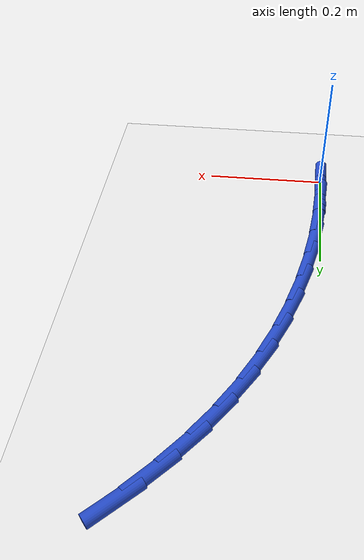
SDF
<sdf version="1.6">
 <world name="default">
  <model name="ground_plane">
   <static>1</static>
   <link name="link">
    <collision name="collision">
     <geometry><plane><normal>0 0 1</normal><size>100 100</size></plane></geometry>
     <surface><friction><ode><mu>100</mu><mu2>50</mu2></ode></friction></surface>
    </collision>
    <visual name="visual">
     <cast_shadows>0</cast_shadows>
     <geometry><plane><normal>0 0 1</normal><size>100 100</size></plane></geometry>
     <material>
      <script><uri>file://media/materials/scripts/gazebo.material</uri><name>Gazebo/WhiteGlow</name></script>
     </material>
    </visual>
   </link>
  </model>
  <model name="line">
   <link name="link_0">
    <pose>7.28583859910259e-17 -1.3877787807814457e-16 0.01 0 1.57 1.5537225617159984</pose>
    <collision name="collision">
     <geometry><cylinder><radius>0.01</radius><length>0.08</length></cylinder></geometry>
    </collision>
    <visual name="visual">
     <material>
      <script><name>Gazebo/Blue</name><uri>file://media/materials/scripts/gazebo.material</uri></script>
     </material>
     <geometry><cylinder><radius>0.01</radius><length>0.08</length></cylinder></geometry>
    </visual>
   </link>
   <link name="link_1">
    <pose>0.0009177130685730315 0.05374467127572898 0.01 0 1.57 1.5046789020279994</pose>
    <collision name="collision">
     <geometry><cylinder><radius>0.01</radius><length>0.08</length></cylinder></geometry>
    </collision>
    <visual name="visual">
     <material>
      <script><name>Gazebo/Blue</name><uri>file://media/materials/scripts/gazebo.material</uri></script>
     </material>
     <geometry><cylinder><radius>0.01</radius><length>0.08</length></cylinder></geometry>
    </visual>
   </link>
   <link name="link_2">
    <pose>0.004464219456044943 0.10730599835347163 0.01 0 1.57 1.453404790527226</pose>
    <collision name="collision">
     <geometry><cylinder><radius>0.01</radius><length>0.08</length></cylinder></geometry>
    </collision>
    <visual name="visual">
     <material>
      <script><name>Gazebo/Blue</name><uri>file://media/materials/scripts/gazebo.material</uri></script>
     </material>
     <geometry><cylinder><radius>0.01</radius><length>0.08</length></cylinder></geometry>
    </visual>
   </link>
   <link name="link_3">
    <pose>0.010732836847451861 0.16045970633039836 0.01 0 1.57 1.399533070379871</pose>
    <collision name="collision">
     <geometry><cylinder><radius>0.01</radius><length>0.08</length></cylinder></geometry>
    </collision>
    <visual name="visual">
     <material>
      <script><name>Gazebo/Blue</name><uri>file://media/materials/scripts/gazebo.material</uri></script>
     </material>
     <geometry><cylinder><radius>0.01</radius><length>0.08</length></cylinder></geometry>
    </visual>
   </link>
   <link name="link_4">
    <pose>0.01981688292782982 0.21298152030367962 0.01 0 1.57 1.3427123948128312</pose>
    <collision name="collision">
     <geometry><cylinder><radius>0.01</radius><length>0.08</length></cylinder></geometry>
    </collision>
    <visual name="visual">
     <material>
      <script><name>Gazebo/Blue</name><uri>file://media/materials/scripts/gazebo.material</uri></script>
     </material>
     <geometry><cylinder><radius>0.01</radius><length>0.08</length></cylinder></geometry>
    </visual>
   </link>
   <link name="link_5">
    <pose>0.0318096753822149 0.26464716537048605 0.01 0 1.57 1.2826200554604477</pose>
    <collision name="collision">
     <geometry><cylinder><radius>0.01</radius><length>0.08</length></cylinder></geometry>
    </collision>
    <visual name="visual">
     <material>
      <script><name>Gazebo/Blue</name><uri>file://media/materials/scripts/gazebo.material</uri></script>
     </material>
     <geometry><cylinder><radius>0.01</radius><length>0.08</length></cylinder></geometry>
    </visual>
   </link>
   <link name="link_6">
    <pose>0.04680453189564315 0.31523236662798826 0.01 0 1.57 1.2189808179549015</pose>
    <collision name="collision">
     <geometry><cylinder><radius>0.01</radius><length>0.08</length></cylinder></geometry>
    </collision>
    <visual name="visual">
     <material>
      <script><name>Gazebo/Blue</name><uri>file://media/materials/scripts/gazebo.material</uri></script>
     </material>
     <geometry><cylinder><radius>0.01</radius><length>0.08</length></cylinder></geometry>
    </visual>
   </link>
   <link name="link_7">
    <pose>0.06489477015315062 0.3645128491733567 0.01 0 1.57 1.1515921880790048</pose>
    <collision name="collision">
     <geometry><cylinder><radius>0.01</radius><length>0.08</length></cylinder></geometry>
    </collision>
    <visual name="visual">
     <material>
      <script><name>Gazebo/Blue</name><uri>file://media/materials/scripts/gazebo.material</uri></script>
     </material>
     <geometry><cylinder><radius>0.01</radius><length>0.08</length></cylinder></geometry>
    </visual>
   </link>
   <link name="link_8">
    <pose>0.08617370783977338 0.41226433810376195 0.01 0 1.57 1.0803555515184737</pose>
    <collision name="collision">
     <geometry><cylinder><radius>0.01</radius><length>0.08</length></cylinder></geometry>
    </collision>
    <visual name="visual">
     <material>
      <script><name>Gazebo/Blue</name><uri>file://media/materials/scripts/gazebo.material</uri></script>
     </material>
     <geometry><cylinder><radius>0.01</radius><length>0.08</length></cylinder></geometry>
    </visual>
   </link>
   <link name="link_9">
    <pose>0.11073466264054746 0.45826255851637465 0.01 0 1.57 1.0061607359212603</pose>
    <collision name="collision">
     <geometry><cylinder><radius>0.01</radius><length>0.08</length></cylinder></geometry>
    </collision>
    <visual name="visual">
     <material>
      <script><name>Gazebo/Blue</name><uri>file://media/materials/scripts/gazebo.material</uri></script>
     </material>
     <geometry><cylinder><radius>0.01</radius><length>0.08</length></cylinder></geometry>
    </visual>
   </link>
   <link name="link_10">
    <pose>0.1386338130623325 0.5023073981597531 0.01 0 1.57 0.93444401420207</pose>
    <collision name="collision">
     <geometry><cylinder><radius>0.01</radius><length>0.08</length></cylinder></geometry>
    </collision>
    <visual name="visual">
     <material>
      <script><name>Gazebo/Blue</name><uri>file://media/materials/scripts/gazebo.material</uri></script>
     </material>
     <geometry><cylinder><radius>0.01</radius><length>0.08</length></cylinder></geometry>
    </visual>
   </link>
   <link name="link_11">
    <pose>0.16969741350169332 0.5443483328023156 0.01 0 1.57 0.867328208359917</pose>
    <collision name="collision">
     <geometry><cylinder><radius>0.01</radius><length>0.08</length></cylinder></geometry>
    </collision>
    <visual name="visual">
     <material>
      <script><name>Gazebo/Blue</name><uri>file://media/materials/scripts/gazebo.material</uri></script>
     </material>
     <geometry><cylinder><radius>0.01</radius><length>0.08</length></cylinder></geometry>
    </visual>
   </link>
   <link name="link_12">
    <pose>0.20366383825357415 0.584392012774861 0.01 0 1.57 0.8047599398684754</pose>
    <collision name="collision">
     <geometry><cylinder><radius>0.01</radius><length>0.08</length></cylinder></geometry>
    </collision>
    <visual name="visual">
     <material>
      <script><name>Gazebo/Blue</name><uri>file://media/materials/scripts/gazebo.material</uri></script>
     </material>
     <geometry><cylinder><radius>0.01</radius><length>0.08</length></cylinder></geometry>
    </visual>
   </link>
   <link name="link_13">
    <pose>0.24027128533590464 0.6224452030935476 0.01 0 1.57 0.74655078326952</pose>
    <collision name="collision">
     <geometry><cylinder><radius>0.01</radius><length>0.08</length></cylinder></geometry>
    </collision>
    <visual name="visual">
     <material>
      <script><name>Gazebo/Blue</name><uri>file://media/materials/scripts/gazebo.material</uri></script>
     </material>
     <geometry><cylinder><radius>0.01</radius><length>0.08</length></cylinder></geometry>
    </visual>
   </link>
   <link name="link_130">
    <pose>5.204170427930421e-17 0.0 0.01 0 1.57 1.5541398923649792</pose>
    <collision name="collision">
     <geometry><cylinder><radius>0.01</radius><length>0.08</length></cylinder></geometry>
    </collision>
    <visual name="visual">
     <material>
      <script><name>Gazebo/Blue</name><uri>file://media/materials/scripts/gazebo.material</uri></script>
     </material>
     <geometry><cylinder><radius>0.01</radius><length>0.08</length></cylinder></geometry>
    </visual>
   </link>
   <link name="link_131">
    <pose>0.0008953519549306059 0.05374914757235748 0.01 0 1.57 1.5541398923649796</pose>
    <collision name="collision">
     <geometry><cylinder><radius>0.01</radius><length>0.08</length></cylinder></geometry>
    </collision>
    <visual name="visual">
     <material>
      <script><name>Gazebo/Blue</name><uri>file://media/materials/scripts/gazebo.material</uri></script>
     </material>
     <geometry><cylinder><radius>0.01</radius><length>0.08</length></cylinder></geometry>
    </visual>
   </link>
  </model>
 </world>
</sdf>
